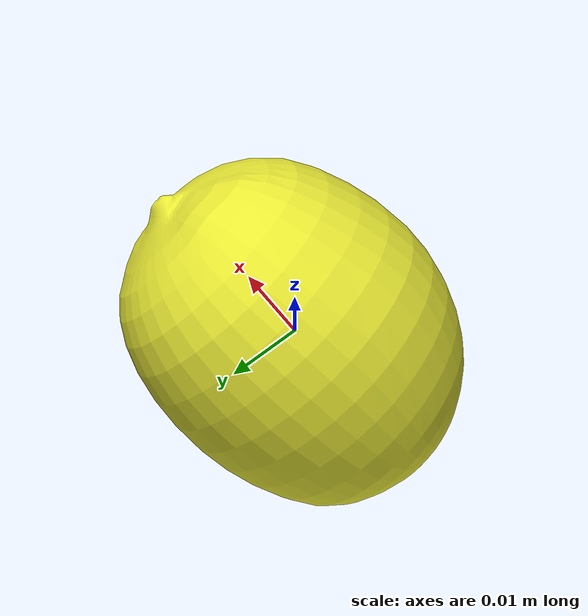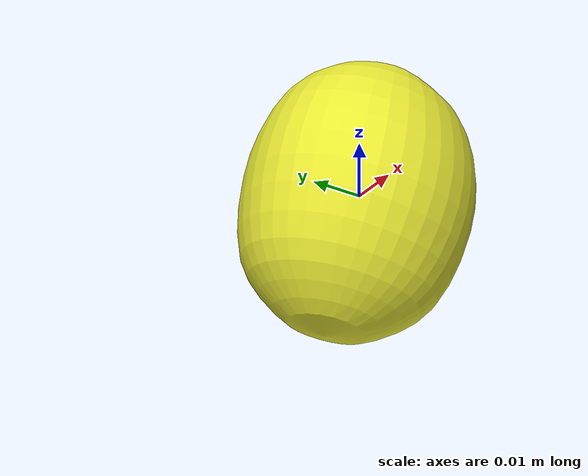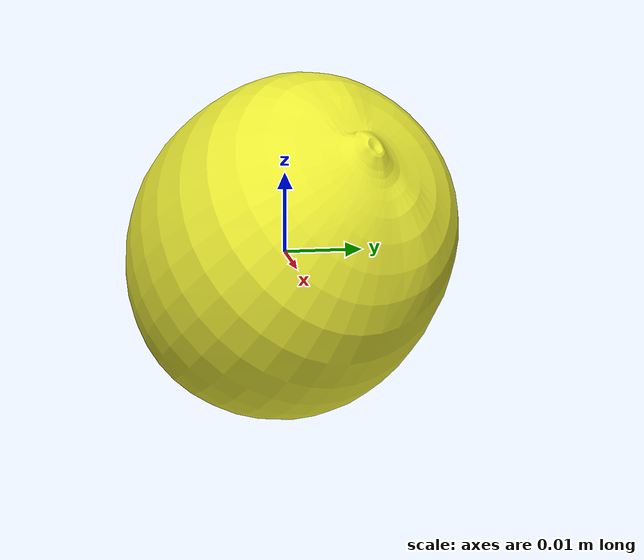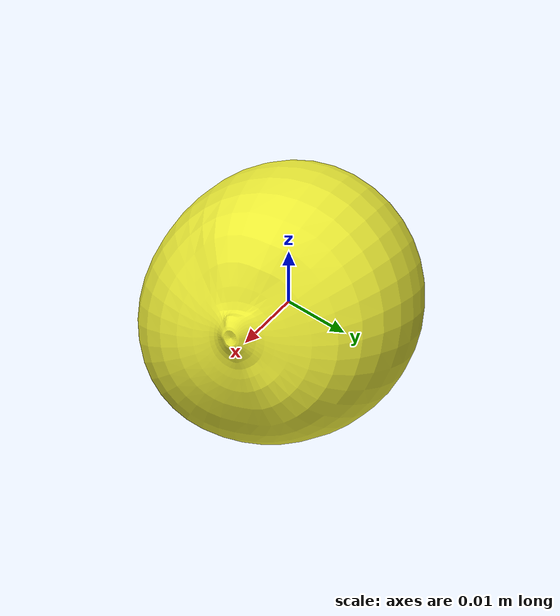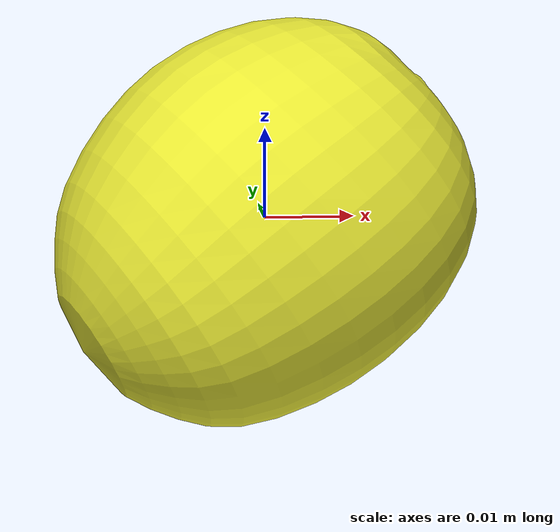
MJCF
<mujoco model="obj_lemon">
    <asset>
        <!-- 视觉网格 -->
        <mesh file="../mesh/obj_lemon/visual/lemon.obj" name="lemon_visual" scale="1.2 1.2 1.2" refquat="0.7071067811865472 0.0 0.0 0.7071067811865476" />

        <!-- 碰撞网格 -->
        <mesh file="../mesh/obj_lemon/collision/obj_lemon.obj" name="lemon_collision_0" scale="1.2 1.2 1.2" refquat="0.7071067811865472 0.0 0.0 0.7071067811865476" />

        <!-- 材质定义 -->
        <material name="lemon_mat" rgba="0.9 0.9 0.2 1" specular="0.5" shininess="0.5" />
    </asset>

    <worldbody>
        <body name="lemon_obj" pos="0 0 0" euler="0 0 0">
            <freejoint />
            <body name="object_lemon" pos="0 0 0" euler="0 0 0">
                <!-- 视觉几何体 -->
                <geom solimp="0.998 0.998 0.001" solref="0.001 1" density="100" friction="0.95 0.3 0.1"
                      type="mesh" mesh="lemon_visual" conaffinity="0" contype="0" group="2" material="lemon_mat" />

                <!-- 碰撞几何体 -->
                <geom solimp="0.998 0.998 0.001" solref="0.001 1" density="100" friction="0.95 0.3 0.1"
                      type="mesh" mesh="lemon_collision_0" group="3" rgba="0.8 0.8 0.8 0.0" />
            </body>

            <!-- 定位点 -->
            <site rgba="0 0 0 0" size="0.005" pos="0 0 -0.05" name="bottom_site_lemon" />
            <site rgba="0 0 0 0" size="0.005" pos="0 0 0.05" name="top_site_lemon" />
            <site rgba="0 0 0 0" size="0.005" pos="0.04 0 0" name="horizontal_radius_site_lemon" />
        </body>
    </worldbody>
</mujoco>
